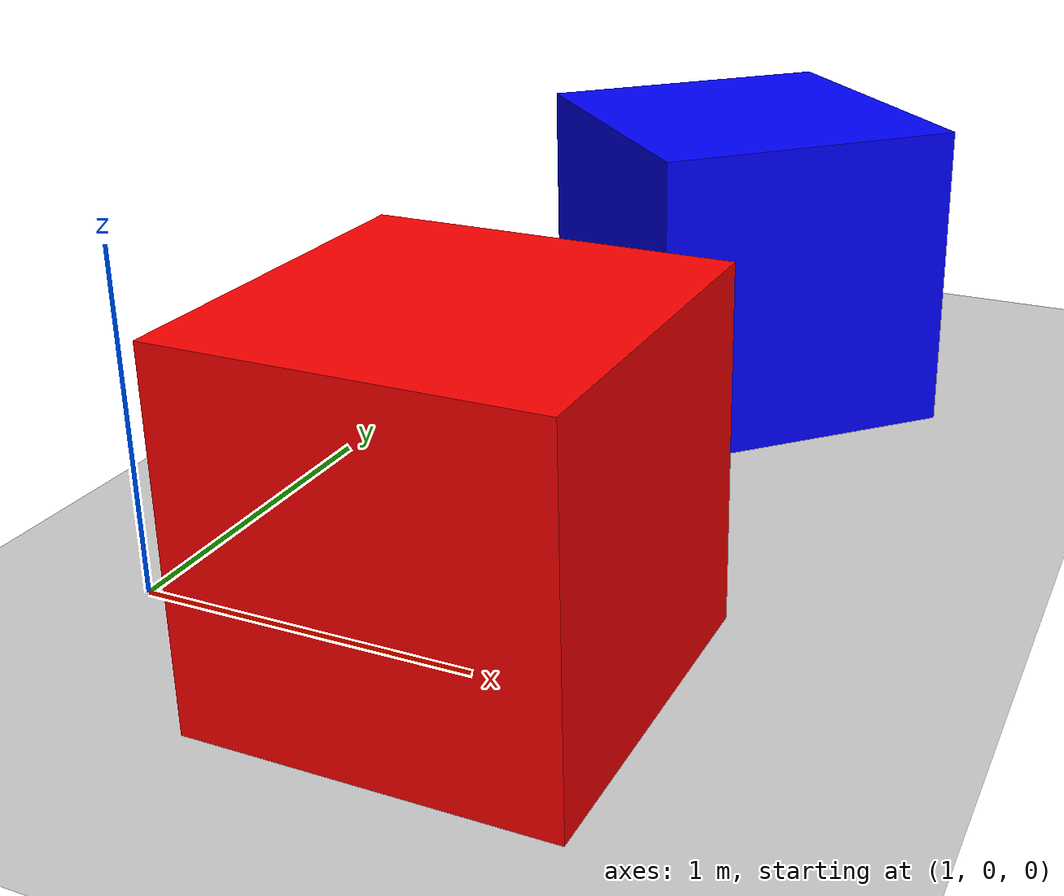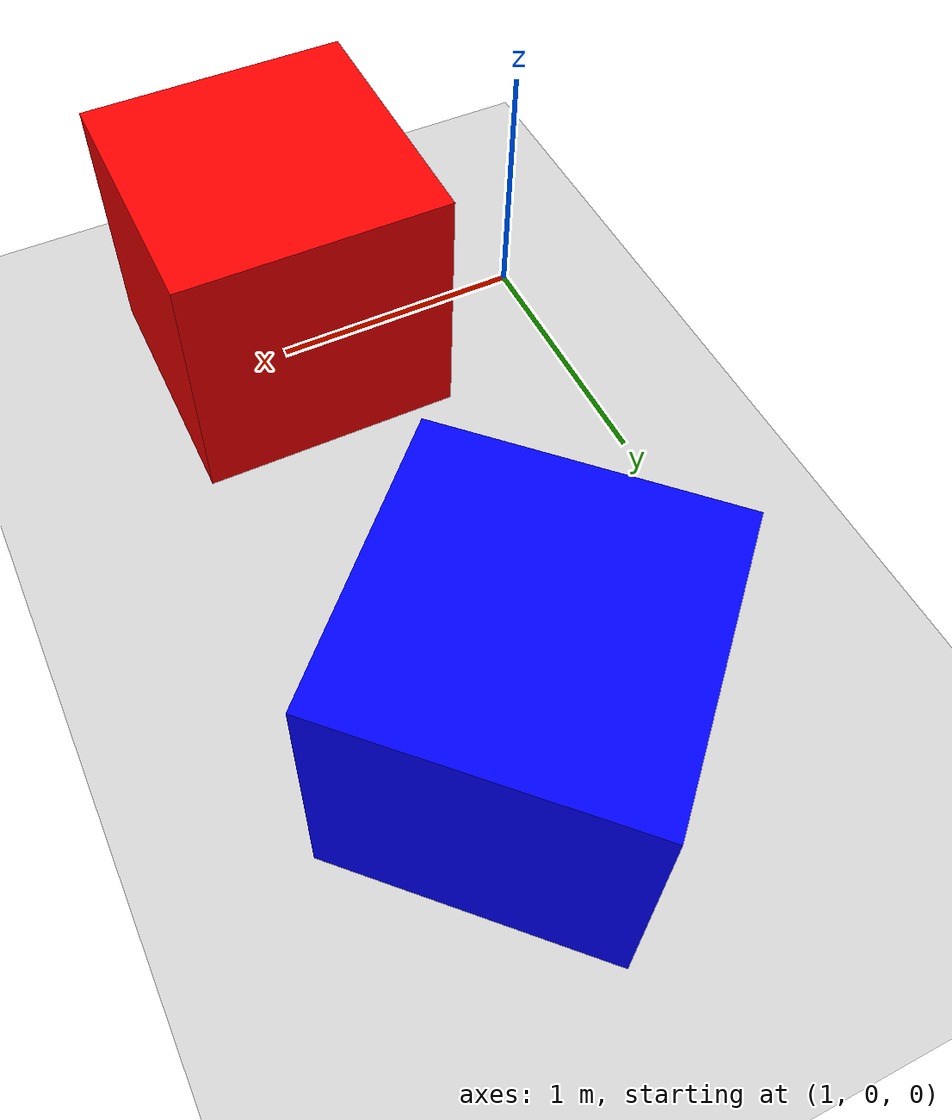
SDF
<?xml version="1.0" ?>
<sdf version="1.7">
  <world name="Stereo_Test_World">

    <!-- The ground plane -->
    <model name="ground_plane">
      <static>true</static>
      <link name="link">
        <collision name="collision">
          <geometry>
            <plane>
              <normal>0 0 1</normal>
              <size>100 100</size>
            </plane>
          </geometry>
        </collision>
        <visual name="visual">
          <geometry>
            <plane>
              <normal>0 0 1</normal>
              <size>100 100</size>
            </plane>
          </geometry>
          <material>
            <ambient>0.8 0.8 0.8 1</ambient>
            <diffuse>0.8 0.8 0.8 1</diffuse>
            <specular>0.8 0.8 0.8 1</specular>
          </material>
        </visual>
      </link>
    </model>

    <!-- Test Cube 1 -->
    <model name="test_cube_1">
      <!--
      FIX 2: POSE REQUIRES 6 VALUES: X Y Z ROLL PITCH YAW
      Your original was '2 0 0.5'. Added RPY (0 0 0).
      -->
      <pose>2 0 0.5 0 0 0</pose>
      <link name="link">
        <visual name="visual">
          <geometry>
            <box>
              <size>1 1 1</size>
            </box>
          </geometry>
          <material>
            <ambient>1 0 0 1</ambient>
            <diffuse>1 0 0 1</diffuse>
            <specular>0.1 0.1 0.1 1</specular>
          </material>
        </visual>
        <collision name="collision">
          <geometry>
            <box>
              <size>1 1 1</size>
            </box>
          </geometry>
        </collision>
      </link>
    </model>

    <!-- Test Cube 2 (Example of another object) -->
    <model name="test_cube_2">
      <!-- Correct 6-value pose format -->
      <pose>2 2 0.5 0 0 0.785</pose>
      <link name="link">
        <visual name="visual">
          <geometry>
            <box>
              <size>1 1 1</size>
            </box>
          </geometry>
          <material>
            <ambient>0 0 1 1</ambient>
            <diffuse>0 0 1 1</diffuse>
            <specular>0.1 0.1 0.1 1</specular>
          </material>
        </visual>
        <collision name="collision">
          <geometry>
            <box>
              <size>1 1 1</size>
            </box>
          </geometry>
        </collision>
      </link>
    </model>

    <!-- Add an ambient light and camera for viewing -->
    <light type="directional" name="directional_light">
      <direction>0.5 0.1 -0.9</direction>
      <diffuse>0.8 0.8 0.8 1</diffuse>
      <specular>0.2 0.2 0.2 1</specular>
    </light>

  </world>
</sdf>
